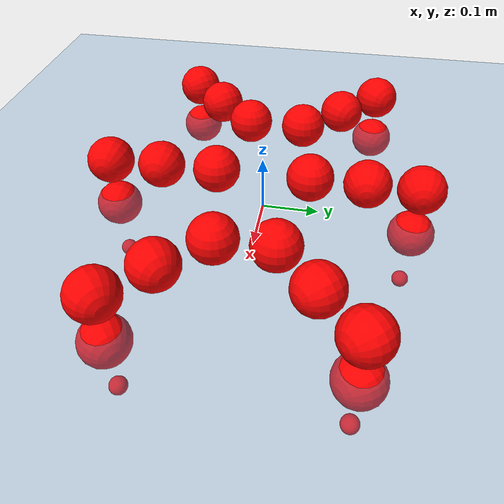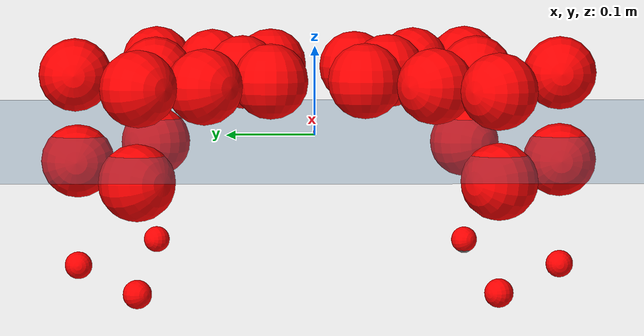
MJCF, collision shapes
<mujoco model="Golem">
  <compiler angle="radian" assetdir="assets" balanceinertia="true" inertiafromgeom="false"/>

  <option timestep="0.005" density="1.2" viscosity="2e-05"/>

  <size nkey="1"/>

  <visual>
    <quality shadowsize="8192"/>
    <map shadowclip="0.5"/>
  </visual>

  <default>
    <default class="/">
      <joint armature="0.01" damping="0.01" frictionloss="0.01"/>
      <geom contype="0" conaffinity="0" group="1" solref="-1000 -80"/>
      <site size="0.01 0.005 0.005" group="5"/>
      <general forcelimited="true" biastype="affine" gainprm="25" biasprm="0 -25 -0.5"/>
      <default class="visual">
        <geom type="mesh" group="2"/>
      </default>
      <default class="collision">
        <geom group="3"/>
      </default>
      <default class="foot">
        <geom size="0.01 0 0" condim="6" group="4" priority="1" solimp="0.015 1 0.01"/>
      </default>
      <default class="reward_collision_sphere">
        <geom group="5" rgba="1 0 0 1"/>
      </default>
    </default>
  </default>

  <asset>
    <texture type="skybox" colorspace="auto" name="//unnamed_texture_0" builtin="gradient" rgb1="0.95 0.95 0.95" rgb2="0.95 0.95 0.95" width="100" height="600"/>
    <texture type="2d" colorspace="auto" name="texplane" builtin="checker" rgb1="0.345 0.575 0.748" rgb2="0.345 0.575 0.748" markrgb="1 1 1" width="512" height="512"/>
    <material name="MatPlane" class="/" texture="texplane" texuniform="true" texrepeat="2 2" specular="0.9"/>
    <mesh name="body" class="/" file="body.stl" scale="0.001 0.001 0.001"/>
    <mesh name="coxa" class="/" file="coxa.stl" scale="0.001 0.001 0.001"/>
    <mesh name="femur" class="/" file="femur.stl" scale="0.001 0.001 0.001"/>
    <mesh name="tibia" class="/" file="tibia.stl" scale="0.001 0.001 0.001"/>
    <mesh name="tarsus" class="/" file="tarsus.stl" scale="0.001 0.001 0.001"/>
  </asset>

  <worldbody>
    <geom name="floor" class="/" size="100 100 0.125" type="plane" group="0" material="MatPlane"/>
    <light name="toplight_shadow" class="/" pos="0 0 5" dir="0.0990148 0.0990148 -0.990148" type="directional" ambient="0.04 0.04 0.04" diffuse="0.55 0.55 0.55" specular="0.12 0.12 0.12"/>
    <light name="toplight_fill" class="/" pos="0 0 5" dir="0.0990148 0.0990148 -0.990148" type="directional" castshadow="false" ambient="0.04 0.04 0.04" diffuse="0.3 0.3 0.3" specular="0.08 0.08 0.08"/>
    <body name="trunk" pos="-0.00132744 -0.000865728 -0.000883365" quat="1 -7.64365e-05 8.78863e-05 -1.09136e-05">
      <inertial pos="0.0016809 -0.000725838 -0.00463504" quat="0.999988 0.0019538 0.000716446 0.00449126" mass="4.06518" diaginertia="0.0161285 0.00509619 0.0180729"/>
      <joint name="//unnamed_joint_0" type="free"/>
      <geom name="//unnamed_geom_1" class="/" pos="0 0 0.0716921" quat="1 0 0 0" type="mesh" rgba="0.9 0.9 0.9 1" mesh="body"/>
      <site name="imu" class="/" pos="0.154464 0.00656246 0.112853" size="0.0103145"/>
      <camera name="track" class="/" pos="0 -1.75128 0" quat="0.707107 0.707107 0 0" mode="trackcom"/>
      <camera name="ego_camera" class="/" pos="0.142806 0 0.112019" quat="-0.5 -0.5 0.5 0.5"/>
      <body name="coxa_RR" pos="-0.195027 -0.075121 0.0712624" quat="0.382582 0.00032063 4.72066e-05 -0.923921">
        <inertial pos="0.000148624 -0.0005389 -0.000207094" quat="1 -0.000566622 0.000583918 0.000406547" mass="0.216786" diaginertia="0.0155532 0.0051049 0.0168303"/>
        <joint name="coxa_joint_RR" class="/" pos="0 0 0" axis="0.00129589 -0.000954299 -0.999999" range="-3.13449 3.14564" armature="0.0105631" damping="0.00755558" frictionloss="0.0102021"/>
        <geom name="//unnamed_geom_2" class="/" type="mesh" rgba="0.2 0.2 0.2 1" mesh="coxa"/>
        <geom name="//unnamed_geom_3" class="reward_collision_sphere" size="0.0412579" pos="-0.0329553 0 0"/>
        <body name="femur_RR" pos="0.0670304 0.00317396 -0.00194904" quat="0.499567 -0.500232 0.500462 0.499739">
          <inertial pos="-0.00274355 -5.46937e-05 -0.00262462" quat="0.999909 0.000281693 0.00724303 0.0113659" mass="0.213458" diaginertia="0.0154924 0.00497102 0.0171591"/>
          <joint name="femur_joint_RR" class="/" pos="0 0 0" axis="0.0010307 0.00107176 -0.999999" stiffness="0.00873171" range="-3.11849 3.1425" armature="0.0101655" damping="0.0031817" frictionloss="0.010415"/>
          <geom name="//unnamed_geom_4" class="/" type="mesh" rgba="0.9 0.9 0.9 1" mesh="femur"/>
          <geom name="//unnamed_geom_5" class="reward_collision_sphere" size="0.0412579"/>
          <body name="tibia_RR" pos="0.00180928 -0.0941523 -0.00205982" quat="-5.79984e-05 1 0.00021512 3.25178e-05">
            <inertial pos="1.72715e-05 0.000634845 -0.00248127" quat="0.999992 -0.0029356 0.00250996 0.00140006" mass="0.225425" diaginertia="0.0166958 0.00543211 0.0181317"/>
            <joint name="tibia_joint_RR" class="/" pos="0 0 0" axis="-0.0034108 -0.0120628 0.999921" range="-3.15818 3.1344" armature="0.0102949" damping="0.00316473" frictionloss="0.00926066"/>
            <geom name="//unnamed_geom_6" class="/" type="mesh" rgba="0.2 0.2 0.2 1" mesh="tibia"/>
            <geom name="//unnamed_geom_7" class="reward_collision_sphere" size="0.0412579"/>
            <body name="tarsus_RR" pos="0.0953926 -3.01991e-05 -0.000554002" quat="1 2.70953e-05 -0.000116795 1.12687e-05">
              <inertial pos="0.0675943 0.000667421 0.00041338" quat="0.506991 0.493932 0.492538 0.506357" mass="0.222936" diaginertia="0.0157078 0.00509685 0.0179067"/>
              <joint name="tarsus_joint_RR" class="/" pos="0 0 0" axis="0.00537814 0.00826484 0.999951" range="-3.14642 3.11392" armature="0.010539" damping="0.0445542" frictionloss="0.00977758"/>
              <geom name="//unnamed_geom_8" class="/" type="mesh" rgba="0.9 0.9 0.9 1" mesh="tarsus"/>
              <geom name="foot_1" class="foot" size="0.0102347" pos="0.123033 0 0" quat="0 -0.707107 0 0.707107"/>
              <geom name="//unnamed_geom_10" class="reward_collision_sphere" size="0.0412579"/>
              <geom name="//unnamed_geom_11" class="reward_collision_sphere" size="0.0154717" pos="0.11809 0 0"/>
              <site name="foot_1" class="foot" pos="0.123033 0 0" quat="0 -0.707107 0 0.707107" size="0.0103145"/>
            </body>
          </body>
        </body>
      </body>
      <body name="coxa_RM" pos="0.000863819 -0.114194 0.0736483" quat="0.706951 -0.00134485 -0.000312572 -0.707262">
        <inertial pos="-0.00212228 0.000209895 -0.00252097" quat="0.999954 0.0038049 0.00539048 -0.00690757" mass="0.220123" diaginertia="0.0153235 0.00512878 0.0176706"/>
        <joint name="coxa_joint_RM" class="/" pos="0 0 0" axis="-0.00117517 0.00417352 -0.999991" range="-3.12028 3.14178" armature="0.0100419" damping="0.00896299" frictionloss="0.0104345"/>
        <geom name="//unnamed_geom_12" class="/" type="mesh" rgba="0.2 0.2 0.2 1" mesh="coxa"/>
        <geom name="//unnamed_geom_13" class="reward_collision_sphere" size="0.0412579" pos="-0.0329553 0 0"/>
        <body name="femur_RM" pos="0.0665593 0.000682432 -0.00179667" quat="0.500063 -0.499723 0.499578 0.500635">
          <inertial pos="0.00269808 -0.000477913 4.02705e-05" quat="0.999908 0.0108518 0.00646081 0.00487444" mass="0.22211" diaginertia="0.015763 0.00499912 0.0177669"/>
          <joint name="femur_joint_RM" class="/" pos="0 0 0" axis="0.00501796 0.00985803 -0.999939" range="-3.13034 3.14591" armature="0.00997267" damping="0.00563281" frictionloss="0.0102994"/>
          <geom name="//unnamed_geom_14" class="/" type="mesh" rgba="0.9 0.9 0.9 1" mesh="femur"/>
          <geom name="//unnamed_geom_15" class="reward_collision_sphere" size="0.0412579"/>
          <body name="tibia_RM" pos="0.00125693 -0.0946105 6.57592e-05" quat="4.50592e-05 1 -3.91407e-06 -0.000140647">
            <inertial pos="-0.0026139 -0.000753712 -0.000895367" quat="0.999994 -0.00103352 0.00157795 -0.00272847" mass="0.218606" diaginertia="0.0162035 0.00496767 0.0168131"/>
            <joint name="tibia_joint_RM" class="/" pos="0 0 0" axis="0.000555828 0.00447934 0.99999" range="-3.12816 3.14874" armature="0.0102249" damping="0.0117387" frictionloss="0.010622"/>
            <geom name="//unnamed_geom_16" class="/" type="mesh" rgba="0.2 0.2 0.2 1" mesh="tibia"/>
            <geom name="//unnamed_geom_17" class="reward_collision_sphere" size="0.0412579"/>
            <body name="tarsus_RM" pos="0.0980902 -0.000412496 -0.000519913" quat="1 2.32272e-05 0.000259254 9.47981e-05">
              <inertial pos="0.0668734 0.000868973 -0.000126707" quat="0.4982 0.503953 0.497548 0.500274" mass="0.217453" diaginertia="0.0153137 0.00510811 0.0178568"/>
              <joint name="tarsus_joint_RM" class="/" pos="0 0 0" axis="0.00992992 0.00351201 0.999945" range="-3.13142 3.13617" armature="0.0101674" damping="0.0049641" frictionloss="0.0105127"/>
              <geom name="//unnamed_geom_18" class="/" type="mesh" rgba="0.9 0.9 0.9 1" mesh="tarsus"/>
              <geom name="foot_2" class="foot" size="0.00939713" pos="0.123033 0 0" quat="0 -0.707107 0 0.707107"/>
              <geom name="//unnamed_geom_20" class="reward_collision_sphere" size="0.0412579"/>
              <geom name="//unnamed_geom_21" class="reward_collision_sphere" size="0.0154717" pos="0.11809 0 0"/>
              <site name="foot_2" class="foot" pos="0.123033 0 0" quat="0 -0.707107 0 0.707107" size="0.0103145"/>
            </body>
          </body>
        </body>
      </body>
      <body name="coxa_RF" pos="0.195126 -0.0704803 0.069671" quat="0.923878 0.000195361 9.8862e-05 -0.382688">
        <inertial pos="-0.00259762 -0.00107829 0.000604543" quat="0.999929 0.00308441 -0.00929778 0.00673386" mass="0.224953" diaginertia="0.016086 0.00494449 0.0175375"/>
        <joint name="coxa_joint_RF" class="/" pos="0 0 0" axis="-0.00230447 0.0015275 -0.999996" range="-3.13339 3.13409" armature="0.0112161" damping="0.0114718" frictionloss="0.0107582"/>
        <geom name="//unnamed_geom_22" class="/" type="mesh" rgba="0.2 0.2 0.2 1" mesh="coxa"/>
        <geom name="//unnamed_geom_23" class="reward_collision_sphere" size="0.0412579" pos="-0.0329553 0 0"/>
        <body name="femur_RF" pos="0.0659068 -0.00109993 0.00146984" quat="0.500364 -0.500032 0.499483 0.500121">
          <inertial pos="0.000628181 0.00259953 0.000575053" quat="0.999999 -0.00107344 0.000845565 2.44595e-05" mass="0.215061" diaginertia="0.0162115 0.00498783 0.0176359"/>
          <joint name="femur_joint_RF" class="/" pos="0 0 0" axis="-0.00368647 -0.00516468 -0.99998" range="-3.15551 3.10907" armature="0.0102256" damping="0.00475664" frictionloss="0.0108667"/>
          <geom name="//unnamed_geom_24" class="/" type="mesh" rgba="0.9 0.9 0.9 1" mesh="femur"/>
          <geom name="//unnamed_geom_25" class="reward_collision_sphere" size="0.0412579"/>
          <body name="tibia_RF" pos="0.00116043 -0.0923553 0.00155298" quat="-4.63424e-05 1 -1.32327e-05 -0.000240342">
            <inertial pos="-0.00212693 -0.0019505 0.00245552" quat="0.999993 -0.000308325 0.000917876 0.00347762" mass="0.224473" diaginertia="0.0160677 0.00517406 0.017717"/>
            <joint name="tibia_joint_RF" class="/" pos="0 0 0" axis="-0.000847324 -0.00502121 0.999987" range="-3.12893 3.10006" armature="0.0104898" damping="0.00426267" frictionloss="0.0105882"/>
            <geom name="//unnamed_geom_26" class="/" type="mesh" rgba="0.2 0.2 0.2 1" mesh="tibia"/>
            <geom name="//unnamed_geom_27" class="reward_collision_sphere" size="0.0412579"/>
            <body name="tarsus_RF" pos="0.0978965 0.00242828 -0.00203854" quat="1 0.00039908 -0.000403285 -0.000549446">
              <inertial pos="0.0658547 0.000161047 -0.00080387" quat="0.49603 0.50295 0.501462 0.499531" mass="0.217705" diaginertia="0.0159827 0.00532798 0.0171654"/>
              <joint name="tarsus_joint_RF" class="/" pos="0 0 0" axis="-0.00367367 0.00382924 0.999986" range="-3.14892 3.13883" armature="0.0114225" damping="0.00403339" frictionloss="0.0116845"/>
              <geom name="//unnamed_geom_28" class="/" type="mesh" rgba="0.9 0.9 0.9 1" mesh="tarsus"/>
              <geom name="foot_3" class="foot" size="0.0113404" pos="0.123033 0 0" quat="0 -0.707107 0 0.707107"/>
              <geom name="//unnamed_geom_30" class="reward_collision_sphere" size="0.0412579"/>
              <geom name="//unnamed_geom_31" class="reward_collision_sphere" size="0.0154717" pos="0.11809 0 0"/>
              <site name="foot_3" class="foot" pos="0.123033 0 0" quat="0 -0.707107 0 0.707107" size="0.0103145"/>
            </body>
          </body>
        </body>
      </body>
      <body name="coxa_LR" pos="-0.195247 0.0744393 0.0707745" quat="0.382885 -0.000774637 -0.000876678 0.923795">
        <inertial pos="0.000719066 -0.00134161 -0.00232159" quat="0.999947 -0.00995177 0.00127583 0.00215851" mass="0.206428" diaginertia="0.0154734 0.00497726 0.0168773"/>
        <joint name="coxa_joint_LR" class="/" pos="0 0 0" axis="0.00254346 -0.000211594 -0.999997" range="-3.11893 3.19276" armature="0.0113411" damping="0.0139019" frictionloss="0.00892591"/>
        <geom name="//unnamed_geom_32" class="/" type="mesh" rgba="0.2 0.2 0.2 1" mesh="coxa"/>
        <geom name="//unnamed_geom_33" class="reward_collision_sphere" size="0.0412579" pos="-0.0329553 0 0"/>
        <body name="femur_LR" pos="0.0670845 -0.000452981 -0.0018658" quat="0.499966 -0.500021 0.500034 0.499979">
          <inertial pos="-0.000882904 -0.000393763 -0.000476562" quat="0.999994 0.00344076 0.000450713 -0.000810992" mass="0.217906" diaginertia="0.0159492 0.005278 0.017558"/>
          <joint name="femur_joint_LR" class="/" pos="0 0 0" axis="-0.000535001 0.00481824 0.999988" range="-3.12918 3.09849" armature="0.0110226" damping="0.00530355" frictionloss="0.0108267"/>
          <geom name="//unnamed_geom_34" class="/" type="mesh" rgba="0.9 0.9 0.9 1" mesh="femur"/>
          <geom name="//unnamed_geom_35" class="reward_collision_sphere" size="0.0412579"/>
          <body name="tibia_LR" pos="-0.00185481 -0.0966162 -0.000877073" quat="-0.000806524 0.999999 0.00059271 0.000371884">
            <inertial pos="0.00118477 0.00282413 3.24044e-05" quat="0.999941 -0.00468763 -0.00642926 -0.00738487" mass="0.213547" diaginertia="0.0164524 0.00526817 0.0169678"/>
            <joint name="tibia_joint_LR" class="/" pos="0 0 0" axis="0.00221144 -0.00522086 -0.999984" range="-3.13644 3.14364" armature="0.00984377" damping="0.00471723" frictionloss="0.0106592"/>
            <geom name="//unnamed_geom_36" class="/" type="mesh" rgba="0.2 0.2 0.2 1" mesh="tibia"/>
            <geom name="//unnamed_geom_37" class="reward_collision_sphere" size="0.0412579"/>
            <body name="tarsus_LR" pos="0.0992977 0.00214192 -4.44749e-06" quat="1 -7.38796e-05 -5.56987e-05 7.40425e-05">
              <inertial pos="0.066418 -0.000704806 0.000830344" quat="0.500002 0.499931 0.499987 0.50008" mass="0.212638" diaginertia="0.0155941 0.00496625 0.0170701"/>
              <joint name="tarsus_joint_LR" class="/" pos="0 0 0" axis="0.00182494 -0.000926896 -0.999998" range="-3.12403 3.15895" armature="0.00878948" damping="0.0287871" frictionloss="0.0107139"/>
              <geom name="//unnamed_geom_38" class="/" type="mesh" rgba="0.9 0.9 0.9 1" mesh="tarsus"/>
              <geom name="foot_4" class="foot" size="0.00993868" pos="0.123033 0 0" quat="0.707107 0 -0.707107 0"/>
              <geom name="//unnamed_geom_40" class="reward_collision_sphere" size="0.0412579"/>
              <geom name="//unnamed_geom_41" class="reward_collision_sphere" size="0.0154717" pos="0.11809 0 0"/>
              <site name="foot_4" class="foot" pos="0.123033 0 0" quat="0.707107 0 -0.707107 0" size="0.0103145"/>
            </body>
          </body>
        </body>
      </body>
      <body name="coxa_LM" pos="-0.00206992 0.11532 0.0724379" quat="0.707853 -0.000469742 0.000143331 0.706359">
        <inertial pos="0.00272631 -0.00258424 1.18935e-05" quat="0.999932 -0.00535347 0.00722265 -0.00736943" mass="0.22217" diaginertia="0.0156363 0.00514008 0.0176567"/>
        <joint name="coxa_joint_LM" class="/" pos="0 0 0" axis="0.000294962 -0.000703746 -1" stiffness="0.00162531" range="-3.14259 3.13426" armature="0.0115637" damping="0" frictionloss="0.00984577"/>
        <geom name="//unnamed_geom_42" class="/" type="mesh" rgba="0.2 0.2 0.2 1" mesh="coxa"/>
        <geom name="//unnamed_geom_43" class="reward_collision_sphere" size="0.0412579" pos="-0.0329553 0 0"/>
        <body name="femur_LM" pos="0.0647002 0.00055866 -0.00136166" quat="0.500205 -0.499417 0.500527 0.499851">
          <inertial pos="-0.00230007 -0.000226108 -0.00260666" quat="0.999991 -0.00144074 0.00218861 0.00331692" mass="0.231187" diaginertia="0.0165333 0.00523914 0.0179781"/>
          <joint name="femur_joint_LM" class="/" pos="0 0 0" axis="-0.00406779 -0.00212888 0.999989" range="-3.11651 3.11844" armature="0.0110368" damping="0.0031324" frictionloss="0.0102431"/>
          <geom name="//unnamed_geom_44" class="/" type="mesh" rgba="0.9 0.9 0.9 1" mesh="femur"/>
          <geom name="//unnamed_geom_45" class="reward_collision_sphere" size="0.0412579"/>
          <body name="tibia_LM" pos="0.00152425 -0.090674 0.00122042" quat="0.000209208 1 0.000166187 0.000152683">
            <inertial pos="0.0027758 0.000645281 0.00256375" quat="0.999999 0.000989344 -0.000178776 -0.000238576" mass="0.217413" diaginertia="0.0159019 0.00494932 0.017921"/>
            <joint name="tibia_joint_LM" class="/" pos="0 0 0" axis="-0.00200698 -0.000832707 -0.999998" range="-3.1609 3.13351" armature="0.011072" damping="0" frictionloss="0.00927866"/>
            <geom name="//unnamed_geom_46" class="/" type="mesh" rgba="0.2 0.2 0.2 1" mesh="tibia"/>
            <geom name="//unnamed_geom_47" class="reward_collision_sphere" size="0.0412579"/>
            <body name="tarsus_LM" pos="0.0971867 -0.00230098 0.00166957" quat="1 0.000535003 0.000296113 -0.000350111">
              <inertial pos="0.0654893 0.000156694 0.00110921" quat="0.500143 0.500118 0.499817 0.499922" mass="0.227123" diaginertia="0.0159806 0.00549027 0.0183112"/>
              <joint name="tarsus_joint_LM" class="/" pos="0 0 0" axis="0.00496626 0.00830537 -0.999953" stiffness="0.00750449" range="-3.18926 3.13081" armature="0.0104173" damping="0.00784423" frictionloss="0.0102979"/>
              <geom name="//unnamed_geom_48" class="/" type="mesh" rgba="0.9 0.9 0.9 1" mesh="tarsus"/>
              <geom name="foot_5" class="foot" size="0.0103032" pos="0.123033 0 0" quat="0.707107 0 -0.707107 0"/>
              <geom name="//unnamed_geom_50" class="reward_collision_sphere" size="0.0412579"/>
              <geom name="//unnamed_geom_51" class="reward_collision_sphere" size="0.0154717" pos="0.11809 0 0"/>
              <site name="foot_5" class="foot" pos="0.123033 0 0" quat="0.707107 0 -0.707107 0" size="0.0103145"/>
            </body>
          </body>
        </body>
      </body>
      <body name="coxa_LF" pos="0.197236 0.0734768 0.0724314" quat="0.924042 -0.00100485 0.000868691 0.382289">
        <inertial pos="0.000506803 0.00281357 -0.000323102" quat="0.999996 0.000594353 0.000733304 0.00258456" mass="0.220659" diaginertia="0.0163209 0.00545778 0.0182387"/>
        <joint name="coxa_joint_LF" class="/" pos="0 0 0" axis="0.0105187 -0.000981131 -0.999944" range="-3.14186 3.14226" armature="0.0115819" damping="0.00167085" frictionloss="0.00979504"/>
        <geom name="//unnamed_geom_52" class="/" type="mesh" rgba="0.2 0.2 0.2 1" mesh="coxa"/>
        <geom name="//unnamed_geom_53" class="reward_collision_sphere" size="0.0412579" pos="-0.0329553 0 0"/>
        <body name="femur_LF" pos="0.066554 -0.00208393 -0.0031023" quat="0.499393 -0.499452 0.500518 0.500636">
          <inertial pos="0.00153881 0.000982604 0.0026609" quat="0.99992 0.00919691 -0.00505192 0.00709775" mass="0.219564" diaginertia="0.0157868 0.00532086 0.0176084"/>
          <joint name="femur_joint_LF" class="/" pos="0 0 0" axis="-0.00787336 0.00379277 0.999962" range="-3.13998 3.08506" armature="0.0102982" damping="0" frictionloss="0.00976322"/>
          <geom name="//unnamed_geom_54" class="/" type="mesh" rgba="0.9 0.9 0.9 1" mesh="femur"/>
          <geom name="//unnamed_geom_55" class="reward_collision_sphere" size="0.0412579"/>
          <body name="tibia_LF" pos="-0.000877985 -0.0960406 -0.000468153" quat="-0.000374487 0.999999 -0.000910123 -0.000733405">
            <inertial pos="-0.00114357 -0.00263762 -0.000215598" quat="0.999995 0.00139076 0.00084655 0.00286448" mass="0.218027" diaginertia="0.0158676 0.00515061 0.0178187"/>
            <joint name="tibia_joint_LF" class="/" pos="0 0 0" axis="0.00145716 -0.0134243 -0.999909" stiffness="6.27374e-05" range="-3.18765 3.14643" armature="0.0110151" damping="0.00491819" frictionloss="0.0116827"/>
            <geom name="//unnamed_geom_56" class="/" type="mesh" rgba="0.2 0.2 0.2 1" mesh="tibia"/>
            <geom name="//unnamed_geom_57" class="reward_collision_sphere" size="0.0412579"/>
            <body name="tarsus_LF" pos="0.0969528 0.00182498 -0.000744843" quat="0.999999 -0.000272756 -0.00117952 -0.000395792">
              <inertial pos="0.0662384 0.000407159 -0.000525606" quat="0.499685 0.500395 0.499648 0.500272" mass="0.219444" diaginertia="0.0154991 0.00503001 0.0170595"/>
              <joint name="tarsus_joint_LF" class="/" pos="0 0 0" axis="-0.0150925 -0.000707361 -0.999886" stiffness="0.0271664" range="-3.15357 3.09115" armature="0.0098861" damping="0.0300826" frictionloss="0.0104762"/>
              <geom name="//unnamed_geom_58" class="/" type="mesh" rgba="0.9 0.9 0.9 1" mesh="tarsus"/>
              <geom name="foot_6" class="foot" size="0.00933594" pos="0.123033 0 0" quat="0.707107 0 -0.707107 0"/>
              <geom name="//unnamed_geom_60" class="reward_collision_sphere" size="0.0412579"/>
              <geom name="//unnamed_geom_61" class="reward_collision_sphere" size="0.0154717" pos="0.11809 0 0"/>
              <site name="foot_6" class="foot" pos="0.123033 0 0" quat="0.707107 0 -0.707107 0" size="0.0103145"/>
            </body>
          </body>
        </body>
      </body>
    </body>
  </worldbody>

  <contact>
    <pair class="/" geom1="floor" geom2="foot_1" name="//unnamed_contact_0"/>
    <pair class="/" geom1="floor" geom2="foot_2" name="//unnamed_contact_1"/>
    <pair class="/" geom1="floor" geom2="foot_3" name="//unnamed_contact_2"/>
    <pair class="/" geom1="floor" geom2="foot_4" name="//unnamed_contact_3"/>
    <pair class="/" geom1="floor" geom2="foot_5" name="//unnamed_contact_4"/>
    <pair class="/" geom1="floor" geom2="foot_6" name="//unnamed_contact_5"/>
  </contact>

  <actuator>
    <general name="coxa_joint_RR" class="/" joint="coxa_joint_RR" forcerange="-6.7675 6.7675" gainprm="24.6266" biasprm="0 -24.6266 -0.518234"/>
    <general name="femur_joint_RR" class="/" joint="femur_joint_RR" forcerange="-7.54281 7.54281" gainprm="24.6266" biasprm="0 -24.6266 -0.518234"/>
    <general name="tibia_joint_RR" class="/" joint="tibia_joint_RR" forcerange="-6.77678 6.77678" gainprm="24.6266" biasprm="0 -24.6266 -0.518234"/>
    <general name="tarsus_joint_RR" class="/" joint="tarsus_joint_RR" forcerange="-7.69953 7.69953" gainprm="24.6266" biasprm="0 -24.6266 -0.518234"/>
    <general name="coxa_joint_RM" class="/" joint="coxa_joint_RM" forcerange="-7.55825 7.55825" gainprm="24.6266" biasprm="0 -24.6266 -0.518234"/>
    <general name="femur_joint_RM" class="/" joint="femur_joint_RM" forcerange="-7.53199 7.53199" gainprm="24.6266" biasprm="0 -24.6266 -0.518234"/>
    <general name="tibia_joint_RM" class="/" joint="tibia_joint_RM" forcerange="-6.79321 6.79321" gainprm="24.6266" biasprm="0 -24.6266 -0.518234"/>
    <general name="tarsus_joint_RM" class="/" joint="tarsus_joint_RM" forcerange="-8.29209 8.29209" gainprm="24.6266" biasprm="0 -24.6266 -0.518234"/>
    <general name="coxa_joint_RF" class="/" joint="coxa_joint_RF" forcerange="-7.24203 7.24203" gainprm="24.6266" biasprm="0 -24.6266 -0.518234"/>
    <general name="femur_joint_RF" class="/" joint="femur_joint_RF" forcerange="-7.39038 7.39038" gainprm="24.6266" biasprm="0 -24.6266 -0.518234"/>
    <general name="tibia_joint_RF" class="/" joint="tibia_joint_RF" forcerange="-8.29198 8.29198" gainprm="24.6266" biasprm="0 -24.6266 -0.518234"/>
    <general name="tarsus_joint_RF" class="/" joint="tarsus_joint_RF" forcerange="-7.50102 7.50102" gainprm="24.6266" biasprm="0 -24.6266 -0.518234"/>
    <general name="coxa_joint_LR" class="/" joint="coxa_joint_LR" forcerange="-7.53911 7.53911" gainprm="24.6266" biasprm="0 -24.6266 -0.518234"/>
    <general name="femur_joint_LR" class="/" joint="femur_joint_LR" forcerange="-6.88124 6.88124" gainprm="24.6266" biasprm="0 -24.6266 -0.518234"/>
    <general name="tibia_joint_LR" class="/" joint="tibia_joint_LR" forcerange="-7.57664 7.57664" gainprm="24.6266" biasprm="0 -24.6266 -0.518234"/>
    <general name="tarsus_joint_LR" class="/" joint="tarsus_joint_LR" forcerange="-7.12296 7.12296" gainprm="24.6266" biasprm="0 -24.6266 -0.518234"/>
    <general name="coxa_joint_LM" class="/" joint="coxa_joint_LM" forcerange="-7.57497 7.57497" gainprm="24.6266" biasprm="0 -24.6266 -0.518234"/>
    <general name="femur_joint_LM" class="/" joint="femur_joint_LM" forcerange="-7.82401 7.82401" gainprm="24.6266" biasprm="0 -24.6266 -0.518234"/>
    <general name="tibia_joint_LM" class="/" joint="tibia_joint_LM" forcerange="-7.01259 7.01259" gainprm="24.6266" biasprm="0 -24.6266 -0.518234"/>
    <general name="tarsus_joint_LM" class="/" joint="tarsus_joint_LM" forcerange="-7.813 7.813" gainprm="24.6266" biasprm="0 -24.6266 -0.518234"/>
    <general name="coxa_joint_LF" class="/" joint="coxa_joint_LF" forcerange="-7.72295 7.72295" gainprm="24.6266" biasprm="0 -24.6266 -0.518234"/>
    <general name="femur_joint_LF" class="/" joint="femur_joint_LF" forcerange="-7.22674 7.22674" gainprm="24.6266" biasprm="0 -24.6266 -0.518234"/>
    <general name="tibia_joint_LF" class="/" joint="tibia_joint_LF" forcerange="-7.95386 7.95386" gainprm="24.6266" biasprm="0 -24.6266 -0.518234"/>
    <general name="tarsus_joint_LF" class="/" joint="tarsus_joint_LF" forcerange="-7.60218 7.60218" gainprm="24.6266" biasprm="0 -24.6266 -0.518234"/>
  </actuator>

  <sensor>
    <gyro site="imu" name="imu_angular_velocity"/>
    <velocimeter site="imu" name="imu_linear_velocity"/>
    <framelinvel objtype="site" objname="foot_1" name="foot_1_global_linear_velocity"/>
    <framelinvel objtype="site" objname="foot_2" name="foot_2_global_linear_velocity"/>
    <framelinvel objtype="site" objname="foot_3" name="foot_3_global_linear_velocity"/>
    <framelinvel objtype="site" objname="foot_4" name="foot_4_global_linear_velocity"/>
    <framelinvel objtype="site" objname="foot_5" name="foot_5_global_linear_velocity"/>
    <framelinvel objtype="site" objname="foot_6" name="foot_6_global_linear_velocity"/>
  </sensor>

  <keyframe>
    <key name="home" qpos="0 0 0.1457 1 0 0 0 0 0 0 0 0 0 0 0 0 0 0 0 0 0 0 0 0 0 0 0 0 0 0 0"/>
  </keyframe>
</mujoco>
